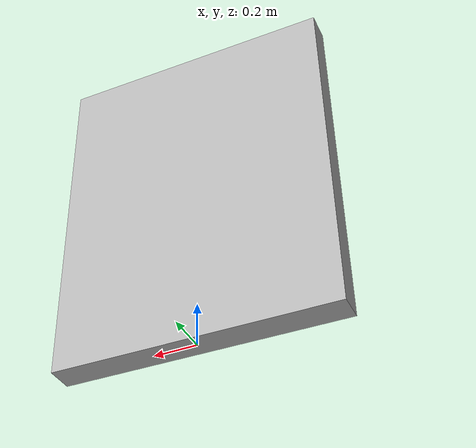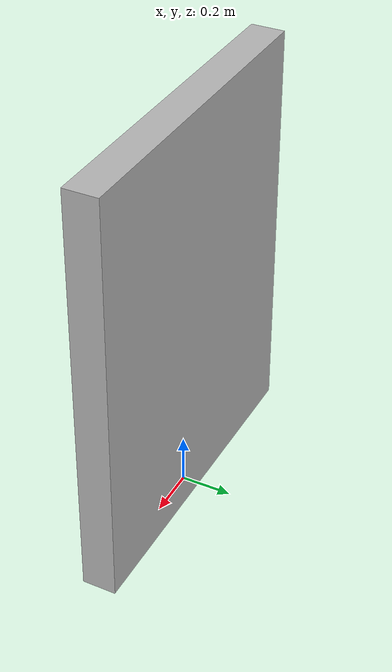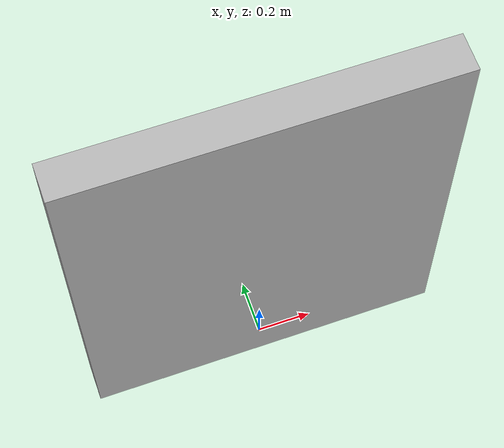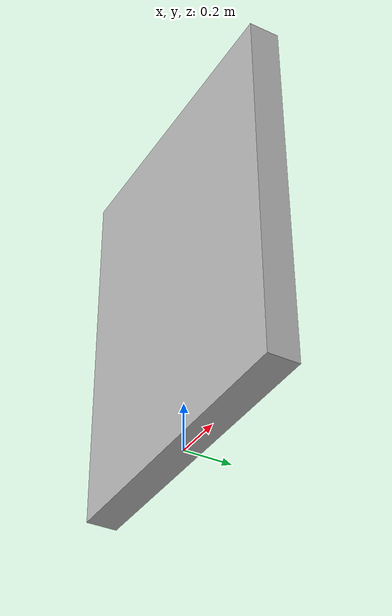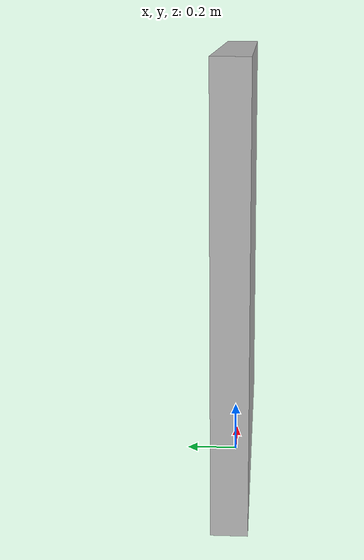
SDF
<?xml version="1.0" ?>
<sdf version="1.5">
  <model name="smaze_wall_short">
    <static>true</static>
    <link name="link">
				<pose>0.0 0.0 0.8250000000000001 0.0 0.0 0.0</pose>
      <collision name="collision">
        <geometry>
          <box>
				<size>1.32 0.132 1.6500000000000001</size>
          </box>
        </geometry>
      </collision>
      <visual name="visual">
        <geometry>
          <box>
				<size>1.32 0.132 1.6500000000000001</size>
          </box>
        </geometry>
        <material>
          <script>
            <uri>model://smaze_wall_short/materials/scripts</uri>
            <uri>model://smaze_wall_short/materials/textures</uri>
            <name>vrc/smaze_wall_short</name>
          </script>
        </material>
      </visual>
    </link>
  </model>
</sdf>
